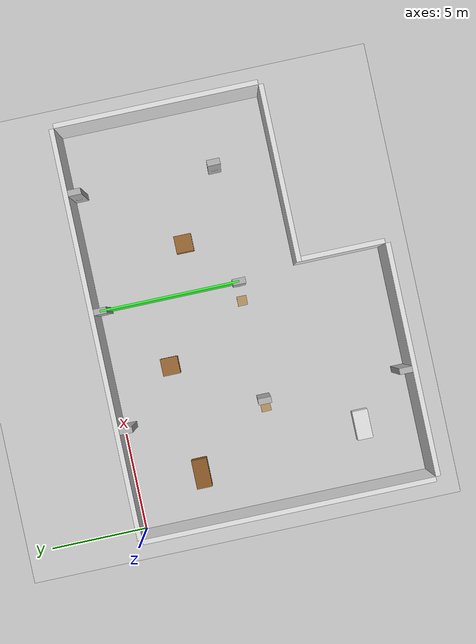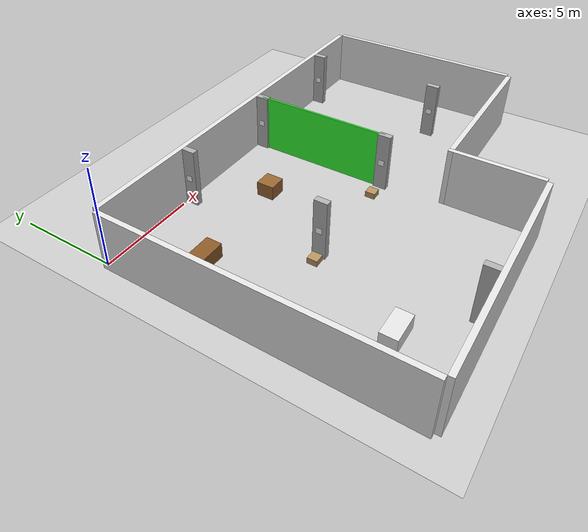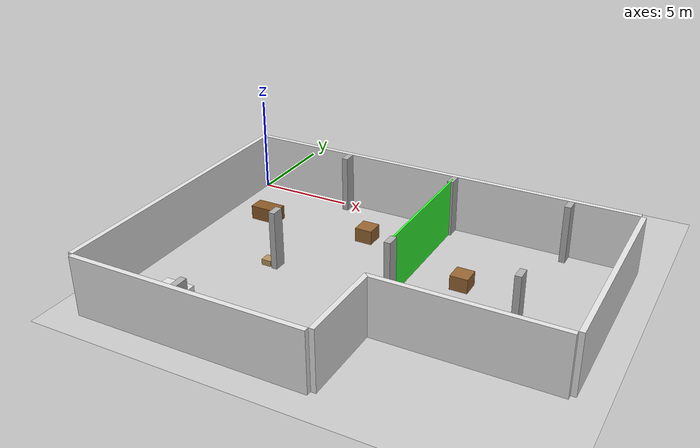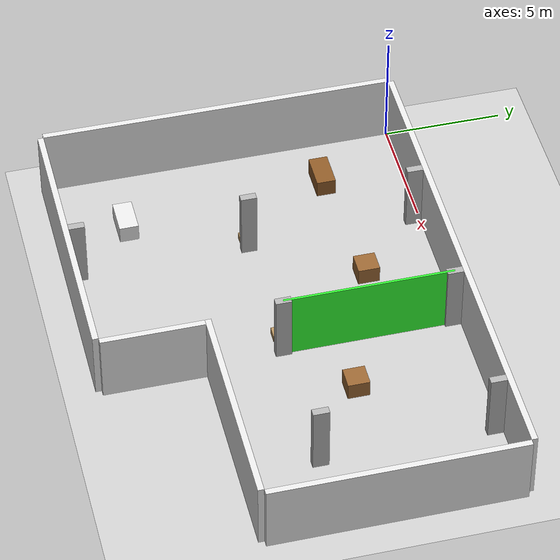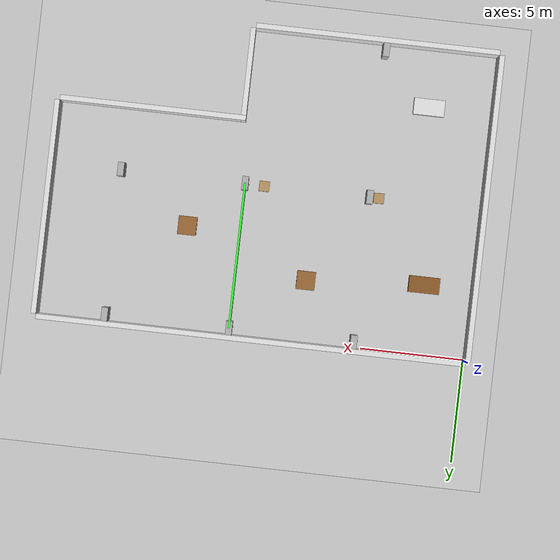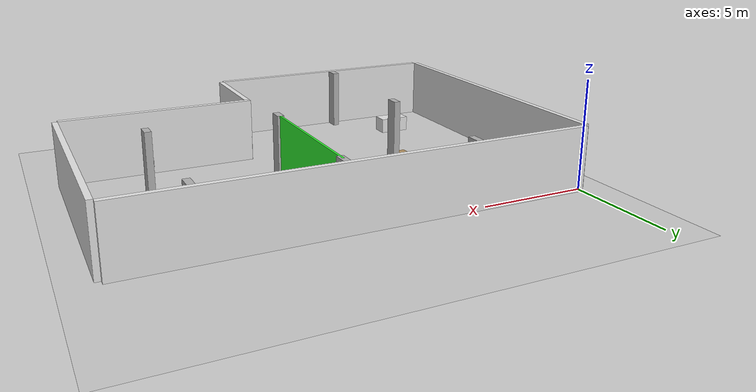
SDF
<?xml version="1.0" ?>
<sdf version="1.8">
  <world name="castelldefels_indoors">

    <!-- Gz Sim system plugins -->
    <plugin filename="gz-sim-physics-system" name="gz::sim::systems::Physics"/>
    <plugin filename="gz-sim-user-commands-system" name="gz::sim::systems::UserCommands"/>
    <plugin filename="gz-sim-scene-broadcaster-system" name="gz::sim::systems::SceneBroadcaster"/>
    <plugin filename="gz-sim-sensors-system" name="gz::sim::systems::Sensors">
      <render_engine>ogre2</render_engine>
    </plugin>
    <plugin filename="gz-sim-imu-system" name="gz::sim::systems::Imu"/>
    <plugin filename="gz-sim-contact-system" name="gz::sim::systems::Contact"/>

    <light name="sun" type="directional">
      <cast_shadows>0</cast_shadows>
      <pose>0 0 10 0 -0 0</pose>
      <diffuse>0.8 0.8 0.8 1</diffuse>
      <specular>0.2 0.03 0.2 1</specular>
      <attenuation>
        <range>1000</range>
        <constant>0.9</constant>
        <linear>0.01</linear>
        <quadratic>0.001</quadratic>
      </attenuation>
      <direction>-0.5 0.1 -0.9</direction>
    </light>

    <model name="ground_plane">
      <static>true</static>
      <link name="ground_plane_link">
        <collision name="collision">
          <geometry>
            <plane>
              <normal>0 0 1</normal>
              <size>100 100</size>
            </plane>
          </geometry>
        </collision>
        <visual name="visual">
          <geometry>
            <plane>
              <normal>0 0 1</normal>
              <size>100 100</size>
            </plane>
          </geometry>
          <material>
            <ambient>0.8 0.8 0.8 1</ambient>
            <diffuse>0.8 0.8 0.8 1</diffuse>
          </material>
        </visual>
      </link>
    </model>

    <model name="column_1">
      <static>true</static>
      <link name="column_1_link">
        <collision name="collision">
          <geometry>
            <box>
              <size>0.31 0.66 3.0</size>
            </box>
          </geometry>
        </collision>
        <visual name="visual">
          <geometry>
            <box>
              <size>0.31 0.66 3.0</size>
            </box>
          </geometry>
          <material>
            <ambient>0.7 0.7 0.7 1</ambient>
            <diffuse>0.7 0.7 0.7 1</diffuse>
          </material>
        </visual>
      </link>
      <pose>5.415 -0.33 1.5 0 0 0</pose>
    </model>

    <model name="column_2">
      <static>true</static>
      <link name="column_2_link">
        <collision name="collision">
          <geometry>
            <box>
              <size>0.31 0.66 3.0</size>
            </box>
          </geometry>
        </collision>
        <visual name="visual">
          <geometry>
            <box>
              <size>0.31 0.66 3.0</size>
            </box>
          </geometry>
          <material>
            <ambient>0.7 0.7 0.7 1</ambient>
            <diffuse>0.7 0.7 0.7 1</diffuse>
          </material>
        </visual>
      </link>
      <pose>11.435 -0.33 1.5 0 0 0</pose>
    </model>

    <model name="column_3">
      <static>true</static>
      <link name="column_3_link">
        <collision name="collision">
          <geometry>
            <box>
              <size>0.31 0.66 3.0</size>
            </box>
          </geometry>
        </collision>
        <visual name="visual">
          <geometry>
            <box>
              <size>0.31 0.66 3.0</size>
            </box>
          </geometry>
          <material>
            <ambient>0.7 0.7 0.7 1</ambient>
            <diffuse>0.7 0.7 0.7 1</diffuse>
          </material>
        </visual>
      </link>
      <pose>17.424999999999997 -0.33 1.5 0 0 0</pose>
    </model>

    <model name="column_4">
      <static>true</static>
      <link name="column_4_link">
        <collision name="collision">
          <geometry>
            <box>
              <size>0.31 0.66 3.0</size>
            </box>
          </geometry>
        </collision>
        <visual name="visual">
          <geometry>
            <box>
              <size>0.31 0.66 3.0</size>
            </box>
          </geometry>
          <material>
            <ambient>0.7 0.7 0.7 1</ambient>
            <diffuse>0.7 0.7 0.7 1</diffuse>
          </material>
        </visual>
      </link>
      <pose>5.415 -7.33 1.5 0 0 0</pose>
    </model>

    <model name="column_5">
      <static>true</static>
      <link name="column_5_link">
        <collision name="collision">
          <geometry>
            <box>
              <size>0.31 0.66 3.0</size>
            </box>
          </geometry>
        </collision>
        <visual name="visual">
          <geometry>
            <box>
              <size>0.31 0.66 3.0</size>
            </box>
          </geometry>
          <material>
            <ambient>0.7 0.7 0.7 1</ambient>
            <diffuse>0.7 0.7 0.7 1</diffuse>
          </material>
        </visual>
      </link>
      <pose>11.435 -7.33 1.5 0 0 0</pose>
    </model>

    <model name="column_6">
      <static>true</static>
      <link name="column_6_link">
        <collision name="collision">
          <geometry>
            <box>
              <size>0.31 0.66 3.0</size>
            </box>
          </geometry>
        </collision>
        <visual name="visual">
          <geometry>
            <box>
              <size>0.31 0.66 3.0</size>
            </box>
          </geometry>
          <material>
            <ambient>0.7 0.7 0.7 1</ambient>
            <diffuse>0.7 0.7 0.7 1</diffuse>
          </material>
        </visual>
      </link>
      <pose>17.424999999999997 -7.33 1.5 0 0 0</pose>
    </model>

    <model name="column_7">
      <static>true</static>
      <link name="column_7_link">
        <collision name="collision">
          <geometry>
            <box>
              <size>0.31 0.66 3.0</size>
            </box>
          </geometry>
        </collision>
        <visual name="visual">
          <geometry>
            <box>
              <size>0.31 0.66 3.0</size>
            </box>
          </geometry>
          <material>
            <ambient>0.7 0.7 0.7 1</ambient>
            <diffuse>0.7 0.7 0.7 1</diffuse>
          </material>
        </visual>
      </link>
      <pose>5.415 -14.43 1.5 0 0 0</pose>
    </model>

    <model name="wall_1">
      <static>true</static>
      <link name="wall_1_link">
        <collision name="collision">
          <geometry>
            <box>
              <size>20.69 0.25 3.0</size>
            </box>
          </geometry>
        </collision>
        <visual name="visual">
          <geometry>
            <box>
              <size>20.69 0.25 3.0</size>
            </box>
          </geometry>
          <material>
            <ambient>0.9 0.9 0.9 1</ambient>
            <diffuse>0.9 0.9 0.9 1</diffuse>
          </material>
        </visual>
      </link>
      <pose>10.345 0.125 1.5 0 0 0.0</pose>
    </model>

    <model name="wall_2">
      <static>true</static>
      <link name="wall_2_link">
        <collision name="collision">
          <geometry>
            <box>
              <size>10.3 0.25 3.0</size>
            </box>
          </geometry>
        </collision>
        <visual name="visual">
          <geometry>
            <box>
              <size>10.3 0.25 3.0</size>
            </box>
          </geometry>
          <material>
            <ambient>0.9 0.9 0.9 1</ambient>
            <diffuse>0.9 0.9 0.9 1</diffuse>
          </material>
        </visual>
      </link>
      <pose>20.815 -5.15 1.5 0 0 -1.5707963267948966</pose>
    </model>

    <model name="wall_3">
      <static>true</static>
      <link name="wall_3_link">
        <collision name="collision">
          <geometry>
            <box>
              <size>8.95 0.25 3.0</size>
            </box>
          </geometry>
        </collision>
        <visual name="visual">
          <geometry>
            <box>
              <size>8.95 0.25 3.0</size>
            </box>
          </geometry>
          <material>
            <ambient>0.9 0.9 0.9 1</ambient>
            <diffuse>0.9 0.9 0.9 1</diffuse>
          </material>
        </visual>
      </link>
      <pose>16.215000000000003 -10.425 1.5 0 0 3.141592653589793</pose>
    </model>

    <model name="wall_4">
      <static>true</static>
      <link name="wall_4_link">
        <collision name="collision">
          <geometry>
            <box>
              <size>4.46 0.25 3.0</size>
            </box>
          </geometry>
        </collision>
        <visual name="visual">
          <geometry>
            <box>
              <size>4.46 0.25 3.0</size>
            </box>
          </geometry>
          <material>
            <ambient>0.9 0.9 0.9 1</ambient>
            <diffuse>0.9 0.9 0.9 1</diffuse>
          </material>
        </visual>
      </link>
      <pose>11.865 -12.530000000000001 1.5 0 0 4.71238898038469</pose>
    </model>

    <model name="wall_5">
      <static>true</static>
      <link name="wall_5_link">
        <collision name="collision">
          <geometry>
            <box>
              <size>11.74 0.25 3.0</size>
            </box>
          </geometry>
        </collision>
        <visual name="visual">
          <geometry>
            <box>
              <size>11.74 0.25 3.0</size>
            </box>
          </geometry>
          <material>
            <ambient>0.9 0.9 0.9 1</ambient>
            <diffuse>0.9 0.9 0.9 1</diffuse>
          </material>
        </visual>
      </link>
      <pose>5.87 -14.885 1.5 0 0 3.141592653589793</pose>
    </model>

    <model name="wall_6">
      <static>true</static>
      <link name="wall_6_link">
        <collision name="collision">
          <geometry>
            <box>
              <size>14.76 0.25 3.0</size>
            </box>
          </geometry>
        </collision>
        <visual name="visual">
          <geometry>
            <box>
              <size>14.76 0.25 3.0</size>
            </box>
          </geometry>
          <material>
            <ambient>0.9 0.9 0.9 1</ambient>
            <diffuse>0.9 0.9 0.9 1</diffuse>
          </material>
        </visual>
      </link>
      <pose>-0.12499999999999954 -7.38 1.5 0 0 1.5707963267948966</pose>
    </model>

    <!-- Aruco Marker 0 on column_1 -->
    <model name="aruco_marker_0">
      <static>true</static>
      <link name="aruco_marker_0_link">
        <visual name="visual">
          <geometry>
            <box>
              <size>0.3 0.001 0.3</size>
            </box>
          </geometry>
          <material>
            <ambient>1.0 1.0 1.0 1</ambient>
            <diffuse>1.0 1.0 1.0 1</diffuse>
            <pbr>
              <metal>
                <albedo_map>aruco_marker_0.png</albedo_map>
              </metal>
            </pbr>
          </material>
        </visual>
      </link>
      <pose>5.21 -0.33 1.5 0 0 -4.7124</pose>
    </model>

    <!-- Aruco Marker 1 on column_2 -->
    <model name="aruco_marker_1">
      <static>true</static>
      <link name="aruco_marker_1_link">
        <visual name="visual">
          <geometry>
            <box>
              <size>0.3 0.001 0.3</size>
            </box>
          </geometry>
          <material>
            <ambient>1.0 1.0 1.0 1</ambient>
            <diffuse>1.0 1.0 1.0 1</diffuse>
            <pbr>
              <metal>
                <albedo_map>aruco_marker_1.png</albedo_map>
              </metal>
            </pbr>
          </material>
        </visual>
      </link>
      <pose>11.23 -0.33 1.5 0 0 -4.7124</pose>
    </model>

    <!-- Aruco Marker 2 on column_3 -->
    <model name="aruco_marker_2">
      <static>true</static>
      <link name="aruco_marker_2_link">
        <visual name="visual">
          <geometry>
            <box>
              <size>0.3 0.001 0.3</size>
            </box>
          </geometry>
          <material>
            <ambient>1.0 1.0 1.0 1</ambient>
            <diffuse>1.0 1.0 1.0 1</diffuse>
            <pbr>
              <metal>
                <albedo_map>aruco_marker_2.png</albedo_map>
              </metal>
            </pbr>
          </material>
        </visual>
      </link>
      <pose>17.22 -0.33 1.5 0 0 -4.7124</pose>
    </model>

    <!-- Aruco Marker 3 on column_4 -->
    <model name="aruco_marker_3">
      <static>true</static>
      <link name="aruco_marker_3_link">
        <visual name="visual">
          <geometry>
            <box>
              <size>0.3 0.001 0.3</size>
            </box>
          </geometry>
          <material>
            <ambient>1.0 1.0 1.0 1</ambient>
            <diffuse>1.0 1.0 1.0 1</diffuse>
            <pbr>
              <metal>
                <albedo_map>aruco_marker_3.png</albedo_map>
              </metal>
            </pbr>
          </material>
        </visual>
      </link>
      <pose>5.21 -7.33 1.5 0 0 -4.7124</pose>
    </model>

    <!-- Aruco Marker 4 on column_5 -->
    <model name="aruco_marker_4">
      <static>true</static>
      <link name="aruco_marker_4_link">
        <visual name="visual">
          <geometry>
            <box>
              <size>0.3 0.001 0.3</size>
            </box>
          </geometry>
          <material>
            <ambient>1.0 1.0 1.0 1</ambient>
            <diffuse>1.0 1.0 1.0 1</diffuse>
            <pbr>
              <metal>
                <albedo_map>aruco_marker_4.png</albedo_map>
              </metal>
            </pbr>
          </material>
        </visual>
      </link>
      <pose>11.23 -7.33 1.5 0 0 -4.7124</pose>
    </model>

    <!-- Aruco Marker 5 on column_6 -->
    <model name="aruco_marker_5">
      <static>true</static>
      <link name="aruco_marker_5_link">
        <visual name="visual">
          <geometry>
            <box>
              <size>0.3 0.001 0.3</size>
            </box>
          </geometry>
          <material>
            <ambient>1.0 1.0 1.0 1</ambient>
            <diffuse>1.0 1.0 1.0 1</diffuse>
            <pbr>
              <metal>
                <albedo_map>aruco_marker_5.png</albedo_map>
              </metal>
            </pbr>
          </material>
        </visual>
      </link>
      <pose>17.22 -7.33 1.5 0 0 -4.7124</pose>
    </model>

    <!-- Cafe table 1 — inline simple table model -->
    <model name="cafe_table_1">
      <static>true</static>
      <link name="link">
        <collision name="collision">
          <geometry>
            <box><size>0.9 0.9 0.74</size></box>
          </geometry>
          <pose>0 0 0.37 0 0 0</pose>
        </collision>
        <visual name="visual">
          <geometry>
            <box><size>0.9 0.9 0.74</size></box>
          </geometry>
          <pose>0 0 0.37 0 0 0</pose>
          <material>
            <ambient>0.6 0.4 0.2 1</ambient>
            <diffuse>0.6 0.4 0.2 1</diffuse>
          </material>
        </visual>
      </link>
      <pose>8 -3 0 0 0 0</pose>
    </model>

    <!-- Cafe table 2 -->
    <model name="cafe_table_2">
      <static>true</static>
      <link name="link">
        <collision name="collision">
          <geometry>
            <box><size>0.9 0.9 0.74</size></box>
          </geometry>
          <pose>0 0 0.37 0 0 0</pose>
        </collision>
        <visual name="visual">
          <geometry>
            <box><size>0.9 0.9 0.74</size></box>
          </geometry>
          <pose>0 0 0.37 0 0 0</pose>
          <material>
            <ambient>0.6 0.4 0.2 1</ambient>
            <diffuse>0.6 0.4 0.2 1</diffuse>
          </material>
        </visual>
      </link>
      <pose>14 -5 0 0 0 0</pose>
    </model>

    <!-- Table 1 -->
    <model name="table_1">
      <static>true</static>
      <link name="link">
        <collision name="collision">
          <geometry>
            <box><size>1.5 0.8 0.74</size></box>
          </geometry>
          <pose>0 0 0.37 0 0 0</pose>
        </collision>
        <visual name="visual">
          <geometry>
            <box><size>1.5 0.8 0.74</size></box>
          </geometry>
          <pose>0 0 0.37 0 0 0</pose>
          <material>
            <ambient>0.55 0.35 0.15 1</ambient>
            <diffuse>0.55 0.35 0.15 1</diffuse>
          </material>
        </visual>
      </link>
      <pose>2.281591 -3.420889 0 0 0 0</pose>
    </model>

    <!-- Cardboard box 1 -->
    <model name="cardboard_box_1">
      <static>true</static>
      <link name="link">
        <collision name="collision">
          <geometry>
            <box><size>0.5 0.5 0.3</size></box>
          </geometry>
          <pose>0 0 0.15 0 0 0</pose>
        </collision>
        <visual name="visual">
          <geometry>
            <box><size>0.5 0.5 0.3</size></box>
          </geometry>
          <pose>0 0 0.15 0 0 0</pose>
          <material>
            <ambient>0.72 0.58 0.38 1</ambient>
            <diffuse>0.72 0.58 0.38 1</diffuse>
          </material>
        </visual>
      </link>
      <pose>4.918403 -7.351679 0 0 0 0.015448</pose>
    </model>

    <!-- Table marble 1 -->
    <model name="table_marble_1">
      <static>true</static>
      <link name="link">
        <collision name="collision">
          <geometry>
            <box><size>1.5 0.8 0.74</size></box>
          </geometry>
          <pose>0 0 0.37 0 0 0</pose>
        </collision>
        <visual name="visual">
          <geometry>
            <box><size>1.5 0.8 0.74</size></box>
          </geometry>
          <pose>0 0 0.37 0 0 0</pose>
          <material>
            <ambient>0.85 0.85 0.85 1</ambient>
            <diffuse>0.9 0.9 0.9 1</diffuse>
          </material>
        </visual>
      </link>
      <pose>3 -12 0 0 0 0</pose>
    </model>

    <!-- Cardboard box 3 -->
    <model name="cardboard_box_3">
      <static>true</static>
      <link name="link">
        <collision name="collision">
          <geometry>
            <box><size>0.5 0.5 0.3</size></box>
          </geometry>
          <pose>0 0 0.15 0 0 0</pose>
        </collision>
        <visual name="visual">
          <geometry>
            <box><size>0.5 0.5 0.3</size></box>
          </geometry>
          <pose>0 0 0.15 0 0 0</pose>
          <material>
            <ambient>0.72 0.58 0.38 1</ambient>
            <diffuse>0.72 0.58 0.38 1</diffuse>
          </material>
        </visual>
      </link>
      <pose>10.510079 -7.314054 0 0 0 -0.011934</pose>
    </model>

    <!-- Wall between column_2 and column_5 -->
    <model name="wall_column_2_to_5">
      <static>true</static>
      <link name="green_wall">
        <collision name="collision">
          <geometry>
            <box>
              <size>7.0 0.1 3.0</size>
            </box>
          </geometry>
        </collision>
        <visual name="visual">
          <geometry>
            <box>
              <size>7.0 0.1 3.0</size>
            </box>
          </geometry>
          <material>
            <ambient>0.1 0.8 0.1 1</ambient>
            <diffuse>0.2 1 0.2 1</diffuse>
          </material>
        </visual>
      </link>
      <pose>11.435 -3.83 1.5 0 0 1.5707963267948966</pose>
    </model>

  </world>
</sdf>
